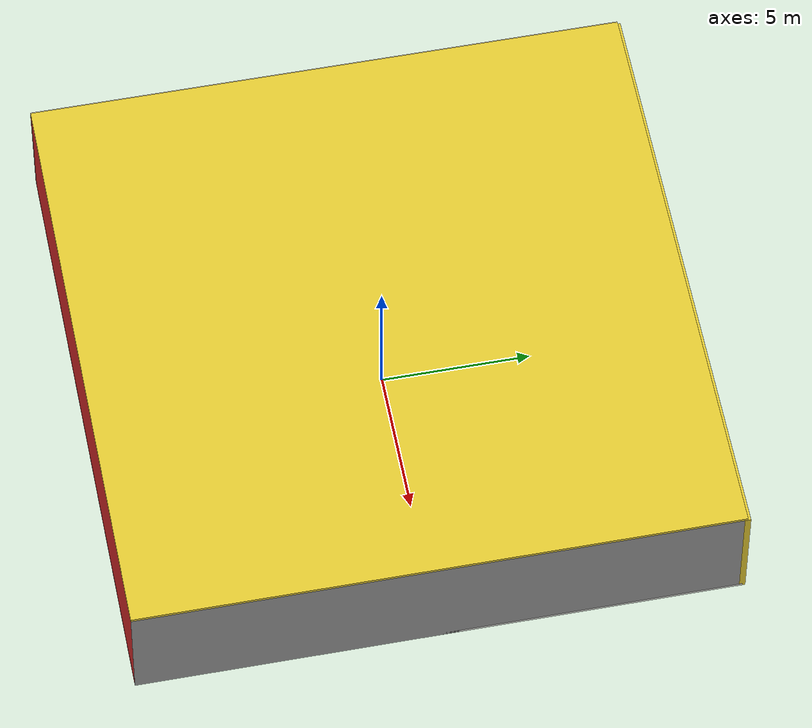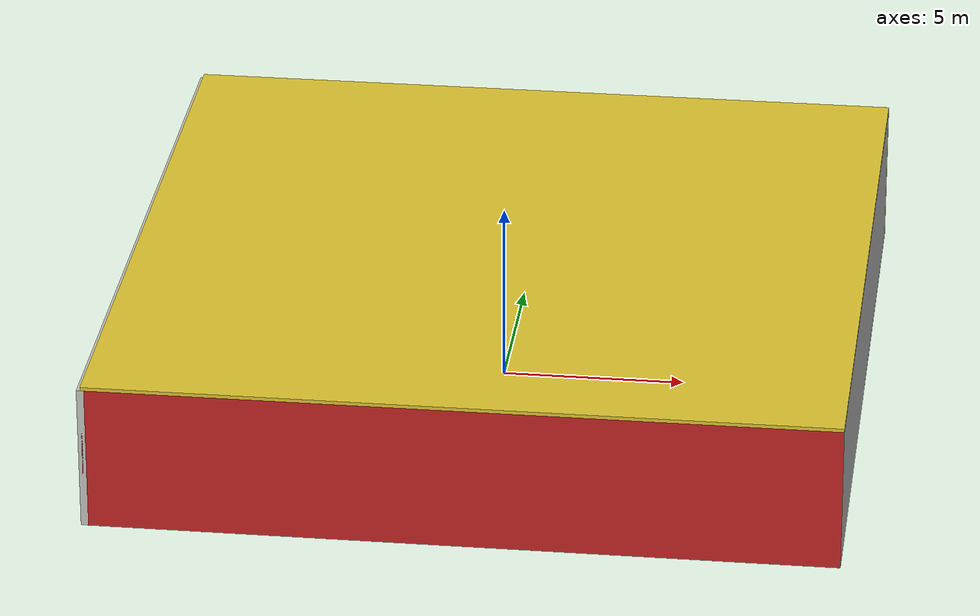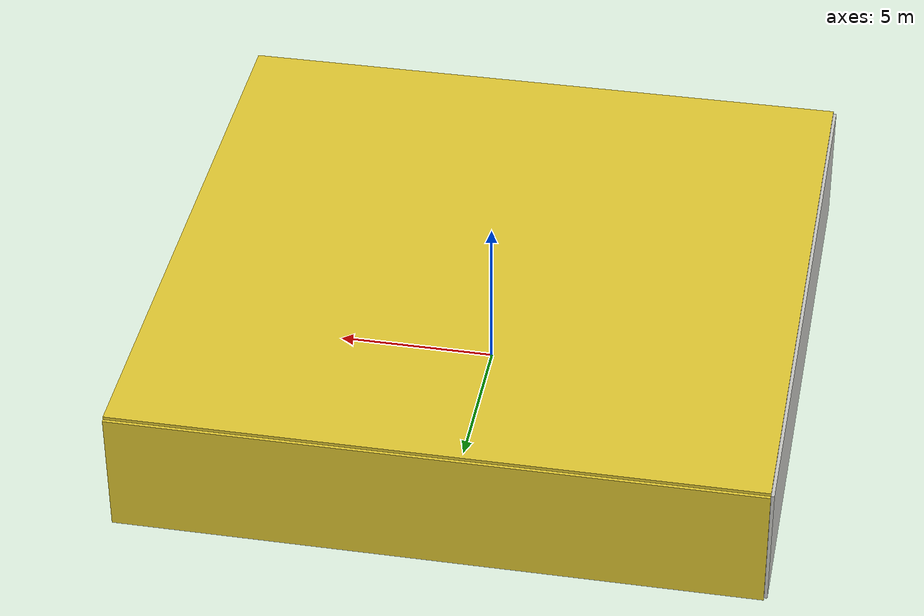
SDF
<sdf version="1.4">
 <world name="default">
  <physics type="ode">
   <max_step_size>0.001</max_step_size>
   <real_time_factor>1</real_time_factor>
   <real_time_update_rate>1000</real_time_update_rate>
   <gravity>0 0 -9.8</gravity>
  </physics>
  <scene><ambient>0.4 0.4 0.4 1</ambient><background>0.7 0.7 0.7 1</background><shadows>1</shadows></scene>
  <model name="Surrounding">
   <static>1</static>
   <link name="Ceiling">
    <collision name="Ceiling_Collision"><geometry><box><size>20 20 0.1</size></box></geometry></collision>
    <visual name="Ceiling_Visual">
     <geometry><box><size>20 20 0.1</size></box></geometry>
     <material>
      <script><uri>file://media/materials/scripts/gazebo.material</uri><name>Gazebo/ZincYellow</name></script>
     </material>
    </visual>
    <pose>0 0 4.05 0 0 0</pose>
   </link>
   <link name="Wall_South">
    <collision name="Wall_South_Collision">
     <geometry><box><size>20 0 4</size></box></geometry>
     <pose>0 0 2 0 -0 0</pose>
    </collision>
    <visual name="Wall_South_Visual">
     <pose>0 0 2 0 -0 0</pose>
     <geometry><box><size>20 0 4</size></box></geometry>
     <material>
      <script><uri>file://media/materials/scripts/gazebo.material</uri><name>Gazebo/RedBright</name></script>
     </material>
    </visual>
    <velocity_decay><linear>0</linear><angular>0</angular></velocity_decay>
    <pose>0 -10 0 0 -0 0</pose>
   </link>
   <link name="Wall_East">
    <collision name="Wall_21_Collision">
     <geometry><box><size>20 0 4</size></box></geometry>
     <pose>0 0 2 0 -0 0</pose>
    </collision>
    <visual name="Wall_21_Visual">
     <pose>0 0 2 0 -0 0</pose>
     <geometry><box><size>20 0 4</size></box></geometry>
     <material>
      <script><uri>file://media/materials/scripts/gazebo.material</uri><name>Gazebo/Grey</name></script>
     </material>
    </visual>
    <velocity_decay><linear>0</linear><angular>0</angular></velocity_decay>
    <pose>10 0 0 0 -0 1.5708</pose>
   </link>
   <link name="Wall_North">
    <collision name="Wall_22_Collision">
     <geometry><box><size>20 0.2 4</size></box></geometry>
     <pose>0 0 2 0 -0 0</pose>
    </collision>
    <visual name="Wall_22_Visual">
     <pose>0 0 2 0 -0 0</pose>
     <geometry><box><size>20 0.2 4</size></box></geometry>
     <material>
      <script><uri>file://media/materials/scripts/gazebo.material</uri><name>Gazebo/ZincYellow</name></script>
     </material>
    </visual>
    <velocity_decay><linear>0</linear><angular>0</angular></velocity_decay>
    <pose>0 10 0 0 -0 0</pose>
   </link>
   <link name="Wall_West">
    <collision name="Wall_23_Collision">
     <geometry><box><size>20 0.2 4</size></box></geometry>
     <pose>0 0 2 0 -0 0</pose>
    </collision>
    <visual name="Wall_23_Visual">
     <pose>0 0 2 0 -0 0</pose>
     <geometry><box><size>20 0.2 4</size></box></geometry>
     <material>
      <script><uri>file://media/materials/scripts/gazebo.material</uri><name>Gazebo/CeilingTiled</name></script>
     </material>
    </visual>
    <velocity_decay><linear>0</linear><angular>0</angular></velocity_decay>
    <pose>-10 0 0 0 0 -1.5708</pose>
   </link>
   <link name="Ground_link">
    <collision name="collision">
     <pose>0 0 .05 0 -0 0</pose>
     <geometry><box><size>20 20 0.1</size></box></geometry>
    </collision>
    <visual name="visual">
     <pose>0 0 .05 0 -0 0</pose>
     <geometry><box><size>20 20 0.1</size></box></geometry>
     <material>
      <script><uri>file://media/materials/scripts/gazebo.material</uri><name>Gazebo/CeilingTiled</name></script>
     </material>
    </visual>
   </link>
   <static>1</static>
  </model>
  <spherical_coordinates>
   <surface_model>EARTH_WGS84</surface_model>
   <latitude_deg>0</latitude_deg>
   <longitude_deg>0</longitude_deg>
   <elevation>0</elevation>
   <heading_deg>0</heading_deg>
  </spherical_coordinates>
  <light name="lightball_0" type="diffuse">
   <diffuse>0.8 0.8 0.8 1</diffuse>
   <specular>0.2 0.2 0.2 1</specular>
   <attenuation>
    <range>100</range>
    <constant>0.7</constant>
    <linear>0.01</linear>
    <quadratic>0.001</quadratic>
   </attenuation>
   <direction>-0.5 0.1 -0.9</direction>
   <pose>9.14915294567 -7.38257971631 1.50531070248 0 0 0</pose>
  </light>
  <light name="lightball_1" type="diffuse">
   <diffuse>0.8 0.8 0.8 1</diffuse>
   <specular>0.2 0.2 0.2 1</specular>
   <attenuation>
    <range>100</range>
    <constant>0.7</constant>
    <linear>0.01</linear>
    <quadratic>0.001</quadratic>
   </attenuation>
   <direction>-0.5 0.1 -0.9</direction>
   <pose>-5.69207000996 2.26183436744 3.58648990172 0 0 0</pose>
  </light>
  <light name="lightball_2" type="diffuse">
   <diffuse>0.8 0.8 0.8 1</diffuse>
   <specular>0.2 0.2 0.2 1</specular>
   <attenuation>
    <range>100</range>
    <constant>0.7</constant>
    <linear>0.01</linear>
    <quadratic>0.001</quadratic>
   </attenuation>
   <direction>-0.5 0.1 -0.9</direction>
   <pose>-2.53919086162 -8.73314983966 2.27451985987 0 0 0</pose>
  </light>
  <include>
   <uri>model://construction_cone</uri>
   <pose>-8.0900632482 7.4489323289 0 0 0 2.53369384654</pose>
  </include>
  <include>
   <uri>model://construction_cone</uri>
   <pose>-3.64258889617 -8.40266262392 0 0 0 0.279940142308</pose>
  </include>
  <include><uri>model://cabinet</uri><pose>-2.45006888092 -8.44525256164 0 0 0 0.618325061413</pose></include>
  <include><uri>model://table</uri><pose>2.08100630719 7.24412213019 0 0 0 2.50149154256</pose></include>
  <include>
   <uri>model://construction_cone</uri>
   <pose>5.29576652672 -1.03543957308 0 0 0 0.749630401007</pose>
  </include>
 </world>
</sdf>

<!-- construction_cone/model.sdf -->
<sdf version="1.5">
  <model name="Construction Cone">
    <link name="link">
      <collision name="collision">
        <geometry>
          <mesh>
            <scale>10 10 10</scale>
            <uri>file://isr-testbed/construction_cone/meshes/construction_cone.dae</uri>
          </mesh>
        </geometry>
      </collision>
      <visual name="visual">
        <geometry>
          <mesh>
            <scale>10 10 10</scale>
            <uri>file://isr-testbed/construction_cone/meshes/construction_cone.dae</uri>
          </mesh>
        </geometry>
      </visual>
    </link>
  </model>
</sdf>

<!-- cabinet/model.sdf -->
<sdf version="1.5">
  <model name="cabinet">
    <static>true</static>
    <link name="cabinet_bottom_plate">
      <inertial>
        <pose>0 0 -1 0 0 0</pose>
        <inertia>
          <ixx>2.050000</ixx>
          <ixy>0</ixy>
          <ixz>0</ixz>
          <iyy>2.050000</iyy>
          <iyz>0</iyz>
          <izz>2.050000</izz>
        </inertia>
        <mass>25.000000</mass>
      </inertial>
      <collision name="cabinet_bottom_plate_geom">
        <pose>0 0 0.010000 0 0 0</pose>
        <geometry>
          <box>
            <size>0.450000 0.450000 0.020000</size>
          </box>
        </geometry>
      </collision>
      <visual name="cabinet_bottom_plate_geom_visual">
        <pose>0 0 0.010000 0 0 0</pose>
        <geometry>
          <box>
            <size>0.450000 0.450000 0.020000</size>
          </box>
        </geometry>
        <material>
          <script>
            <uri>model://media/materials/scripts/gazebo.material</uri>
            <name>Gazebo/Wood</name>
          </script>
        </material>
      </visual>
      <collision name="cabinet_bottom_plate_geom_cabinet_back_plate">
        <pose>0.235000 0 0.510000 0 0 0</pose>
        <geometry>
          <box>
            <size>0.020000 0.450000 1.020000</size>
          </box>
        </geometry>
      </collision>
      <visual name="cabinet_bottom_plate_geom_cabinet_back_plate_visual">
        <pose>0.235000 0 0.510000 0 0 0</pose>
        <geometry>
          <box>
            <size>0.020000 0.450000 1.020000</size>
          </box>
        </geometry>
        <material>
          <script>
            <uri>model://media/materials/scripts/gazebo.material</uri>
            <name>Gazebo/Wood</name>
          </script>
        </material>
      </visual>
      <collision name="cabinet_bottom_plate_geom_cabinet_left_plate">
        <pose>0 0.235000 0.510000 0 0 0</pose>
        <geometry>
          <box>
            <size>0.450000 0.020000 1.020000</size>
          </box>
        </geometry>
      </collision>
      <visual name="cabinet_bottom_plate_geom_cabinet_left_plate_visual">
        <pose>0 0.235000 0.510000 0 0 0</pose>
        <geometry>
          <box>
            <size>0.450000 0.020000 1.020000</size>
          </box>
        </geometry>
        <material>
          <script>
            <uri>model://media/materials/scripts/gazebo.material</uri>
            <name>Gazebo/Wood</name>
          </script>
        </material>
      </visual>
      <collision name="cabinet_bottom_plate_geom_cabinet_middle_plate">
        <pose>0 0 0.510000 0 0 0</pose>
        <geometry>
          <box>
            <size>0.450000 0.450000 0.020000</size>
          </box>
        </geometry>
      </collision>
      <visual name="cabinet_bottom_plate_geom_cabinet_middle_plate_visual">
        <pose>0 0 0.510000 0 0 0</pose>
        <geometry>
          <box>
            <size>0.450000 0.450000 0.020000</size>
          </box>
        </geometry>
        <material>
          <script>
            <uri>model://media/materials/scripts/gazebo.material</uri>
            <name>Gazebo/Wood</name>
          </script>
        </material>
      </visual>
      <collision name="cabinet_bottom_plate_geom_cabinet_right_plate">
        <pose>0 -0.235000 0.510000 0 0 0</pose>
        <geometry>
          <box>
            <size>0.450000 0.020000 1.020000</size>
          </box>
        </geometry>
      </collision>
      <visual name="cabinet_bottom_plate_geom_cabinet_right_plate_visual">
        <pose>0 -0.235000 0.510000 0 0 0</pose>
        <geometry>
          <box>
            <size>0.450000 0.020000 1.020000</size>
          </box>
        </geometry>
        <material>
          <script>
            <uri>model://media/materials/scripts/gazebo.material</uri>
            <name>Gazebo/Wood</name>
          </script>
        </material>
      </visual>
      <collision name="cabinet_bottom_plate_geom_cabinet_top_plate">
        <pose>0 0 1.010000 0 0 0</pose>
        <geometry>
          <box>
            <size>0.450000 0.450000 0.020000</size>
          </box>
        </geometry>
      </collision>
      <visual name="cabinet_bottom_plate_geom_cabinet_top_plate_visual">
        <pose>0 0 1.010000 0 0 0</pose>
        <geometry>
          <box>
            <size>0.450000 0.450000 0.020000</size>
          </box>
        </geometry>
        <material>
          <script>
            <uri>model://media/materials/scripts/gazebo.material</uri>
            <name>Gazebo/Wood</name>
          </script>
        </material>
      </visual>
    </link>
  </model>
</sdf>

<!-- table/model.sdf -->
<sdf version="1.5">
  <model name="table">
    <static>true</static>
    <link name="link">
      <collision name="surface">
        <pose>0 0 1.0 0 0 0</pose>
        <geometry>
          <box>
            <size>1.5 0.8 0.03</size>
          </box>
        </geometry>
        <surface>
          <friction>
            <ode>
              <mu>0.6</mu>
              <mu2>0.6</mu2>
            </ode>
          </friction>
        </surface>
      </collision>
      <visual name="visual1">
        <pose>0 0 1.0 0 0 0</pose>
        <geometry>
          <box>
            <size>1.5 0.8 0.03</size>
          </box>
        </geometry>
        <material>
          <script>
            <uri>model://media/materials/scripts/gazebo.material</uri>
            <name>Gazebo/Wood</name>
          </script>
        </material>
      </visual>
      <collision name="front_left_leg">
        <pose>0.68 0.38 0.5 0 0 0</pose>
        <geometry>
          <cylinder>
            <radius>0.02</radius>
            <length>1.0</length>
          </cylinder>
        </geometry>
      </collision>
      <visual name="front_left_leg">
        <pose>0.68 0.38 0.5 0 0 0</pose>
        <geometry>
          <cylinder>
            <radius>0.02</radius>
            <length>1.0</length>
          </cylinder>
        </geometry>
        <material>
          <script>
            <uri>model://media/materials/scripts/gazebo.material</uri>
            <name>Gazebo/Grey</name>
          </script>
        </material>
      </visual>
      <collision name="front_right_leg">
        <pose>0.68 -0.38 0.5 0 0 0</pose>
        <geometry>
          <cylinder>
            <radius>0.02</radius>
            <length>1.0</length>
          </cylinder>
        </geometry>
      </collision>
      <visual name="front_right_leg">
        <pose>0.68 -0.38 0.5 0 0 0</pose>
        <geometry>
          <cylinder>
            <radius>0.02</radius>
            <length>1.0</length>
          </cylinder>
        </geometry>
        <material>
          <script>
            <uri>model://media/materials/scripts/gazebo.material</uri>
            <name>Gazebo/Grey</name>
          </script>
        </material>
      </visual>
      <collision name="back_right_leg">
        <pose>-0.68 -0.38 0.5 0 0 0</pose>
        <geometry>
          <cylinder>
            <radius>0.02</radius>
            <length>1.0</length>
          </cylinder>
        </geometry>
      </collision>
      <visual name="back_right_leg">
        <pose>-0.68 -0.38 0.5 0 0 0</pose>
        <geometry>
          <cylinder>
            <radius>0.02</radius>
            <length>1.0</length>
          </cylinder>
        </geometry>
        <material>
          <script>
            <uri>model://media/materials/scripts/gazebo.material</uri>
            <name>Gazebo/Grey</name>
          </script>
        </material>
      </visual>
      <collision name="back_left_leg">
        <pose>-0.68 0.38 0.5 0 0 0</pose>
        <geometry>
          <cylinder>
            <radius>0.02</radius>
            <length>1.0</length>
          </cylinder>
        </geometry>
      </collision>
      <visual name="back_left_leg">
        <pose>-0.68 0.38 0.5 0 0 0</pose>
        <geometry>
          <cylinder>
            <radius>0.02</radius>
            <length>1.0</length>
          </cylinder>
        </geometry>
        <material>
          <script>
            <uri>model://media/materials/scripts/gazebo.material</uri>
            <name>Gazebo/Grey</name>
          </script>
        </material>
      </visual>
    </link>
  </model>
</sdf>
